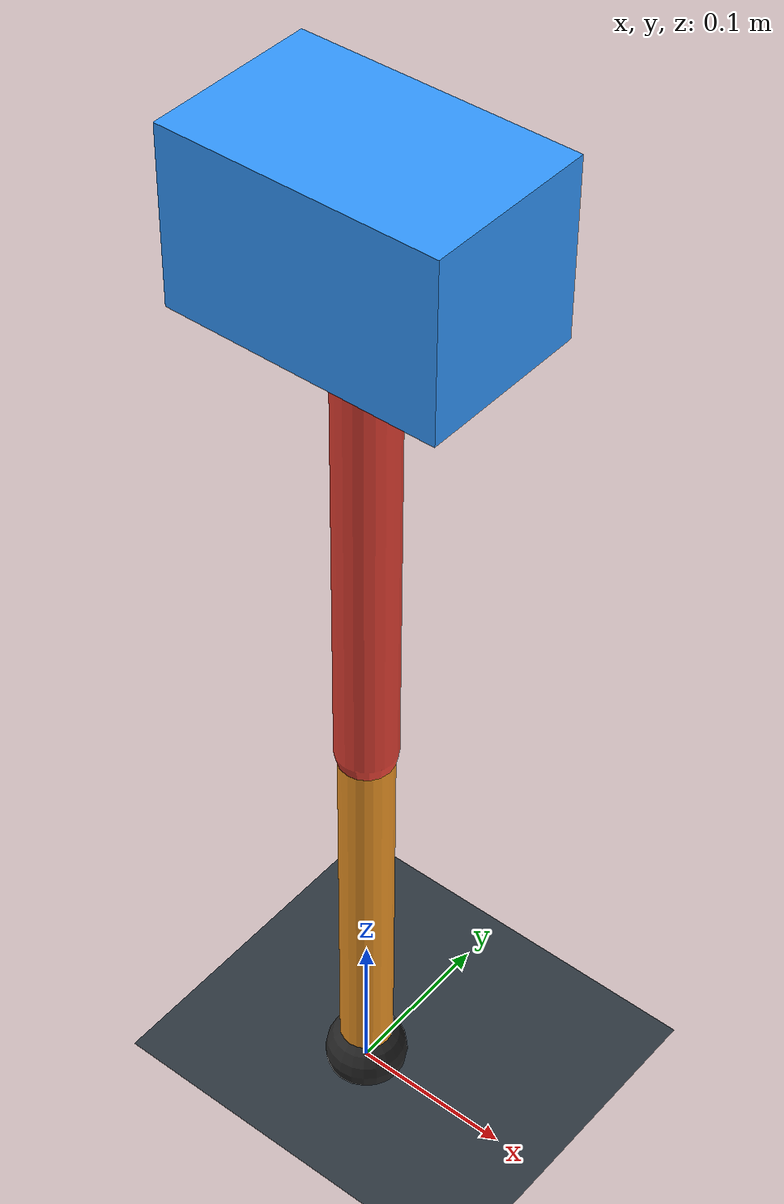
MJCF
<mujoco model="single_axis_two_bar">
  <compiler angle="radian" inertiafromgeom="true"/>
  <option timestep="0.001" integrator="implicitfast" gravity="0 0 -9.81"/>
  <default>
    <joint damping="0.08"/>
    <geom friction="1.2 0.01 0.0001" condim="3"/>
  </default>
  <worldbody>
    <geom name="floor" type="plane" size="5 5 0.1" rgba="0.18 0.22 0.25 1"/>
    <body name="carriage" pos="0 0 0.6065238038749723">
      <joint name="pole_slide" type="slide" axis="0 0 1"/>
      <geom name="payload" type="box" size="0.08 0.05 0.05" mass="2.3033424864656897" rgba="0.2 0.6 1 1"/>
      <body name="thigh" pos="0 0 0">
        <joint name="hip" type="hinge" axis="0 1 0"/>
        <geom name="thigh_link" type="capsule" fromto="0 0 0 0 0 -0.3365066547645401" size="0.018" mass="0.2397654380628663" rgba="0.9 0.25 0.2 1"/>
        <body name="shank" pos="0 0 -0.3365066547645401">
          <joint name="knee" type="hinge" axis="0 1 0"/>
          <geom name="shank_link" type="capsule" fromto="0 0 0 0 0 -0.26300242139522517" size="0.016" mass="0.18739270051447923" rgba="0.95 0.6 0.15 1"/>
          <geom name="foot" type="sphere" pos="0 0 -0.26300242139522517" size="0.025" mass="0.03" rgba="0.15 0.15 0.15 1"/>
          <site name="toe" pos="0 0 -0.26300242139522517" size="0.008"/>
        </body>
      </body>
    </body>
  </worldbody>
  <actuator>
    <motor name="hip_motor" joint="hip" ctrlrange="-28.54934069705769 28.54934069705769"/>
    <motor name="knee_motor" joint="knee" ctrlrange="-37.95061311650165 37.95061311650165"/>
  </actuator>
</mujoco>
